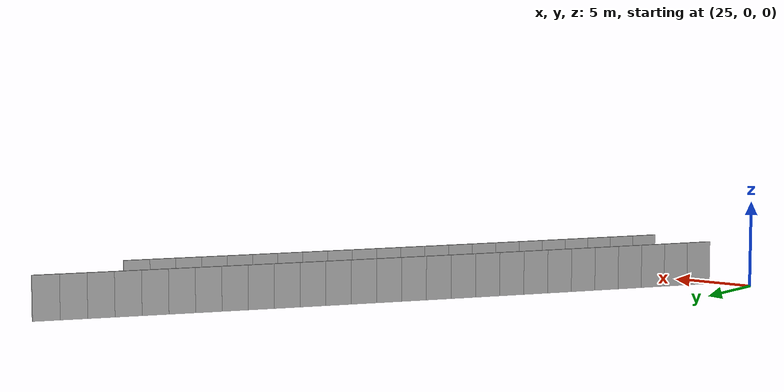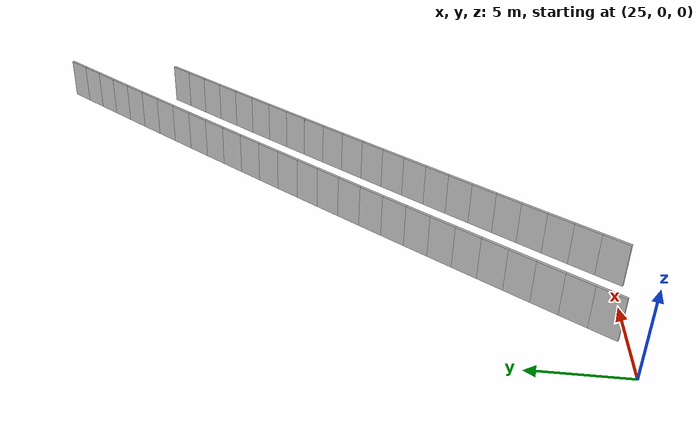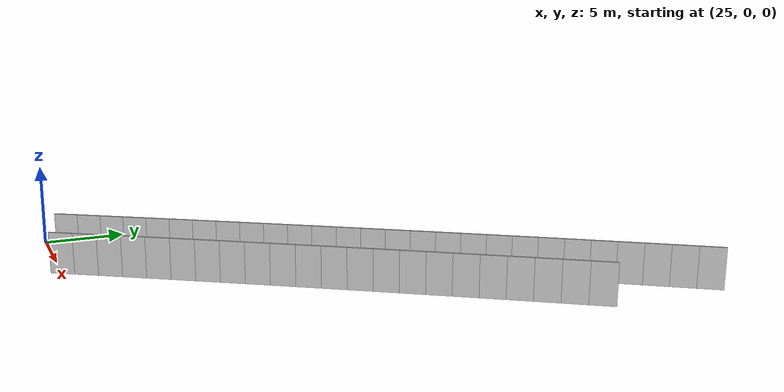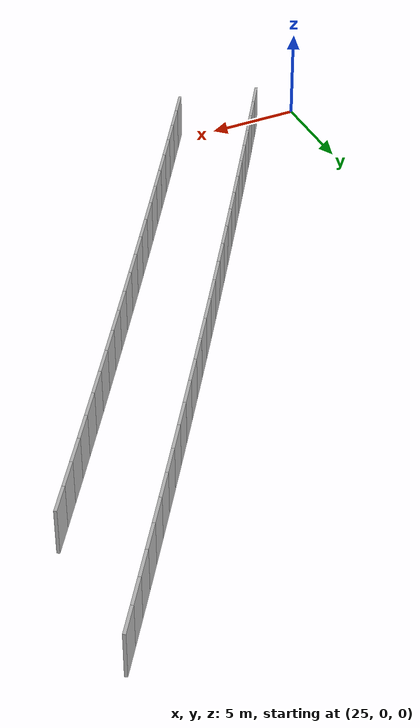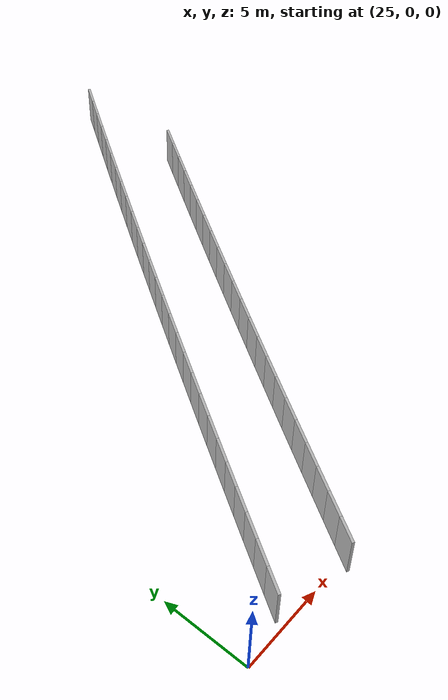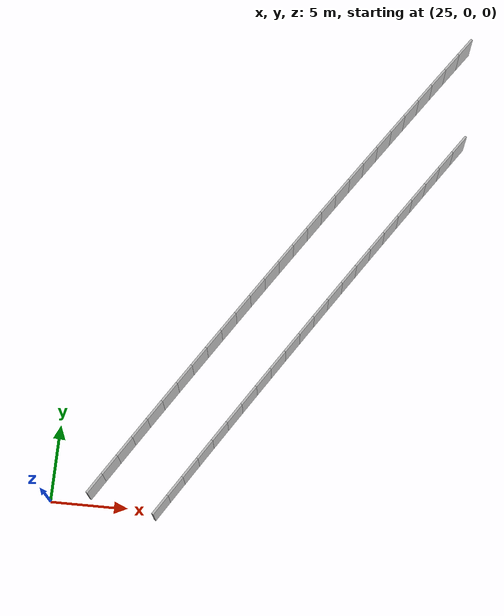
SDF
<?xml version="1.0" ?>
<sdf version="1.6">
  <model name="sps_0536">
    <pose frame="">0 0 0 0 -0 0</pose>
    <static>1</static>
    <self_collide>0</self_collide>
    <allow_auto_disable>0</allow_auto_disable>
    <link name="Wall4829">
      <kinematic>0</kinematic>
      <gravity>1</gravity>
      <self_collide>0</self_collide>
      <collision name="collision">
        <geometry>
          <box>
            <size>1.49647 0.15 2.5</size>
          </box>
        </geometry>
        <pose frame="">0 0 0 0 -0 0</pose>
      </collision>
      <visual name="visual">
        <geometry>
          <box>
            <size>1.49647 0.15 2.5</size>
          </box>
        </geometry>
        <pose frame="">0 0 0 0 -0 0</pose>
        <cast_shadows>1</cast_shadows>
        <transparency>0.0</transparency>
      </visual>
      <pose frame="">49.5547 26.3019 1.25 0 0 -2.17114</pose>
    </link>
    <link name="Wall4830">
      <kinematic>0</kinematic>
      <gravity>1</gravity>
      <self_collide>0</self_collide>
      <collision name="collision">
        <geometry>
          <box>
            <size>1.49665 0.15 2.5</size>
          </box>
        </geometry>
        <pose frame="">0 0 0 0 -0 0</pose>
      </collision>
      <visual name="visual">
        <geometry>
          <box>
            <size>1.49665 0.15 2.5</size>
          </box>
        </geometry>
        <pose frame="">0 0 0 0 -0 0</pose>
        <cast_shadows>1</cast_shadows>
        <transparency>0.0</transparency>
      </visual>
      <pose frame="">48.7103 25.0663 1.25 0 0 -2.16943</pose>
    </link>
    <link name="Wall4831">
      <kinematic>0</kinematic>
      <gravity>1</gravity>
      <self_collide>0</self_collide>
      <collision name="collision">
        <geometry>
          <box>
            <size>1.49636 0.15 2.5</size>
          </box>
        </geometry>
        <pose frame="">0 0 0 0 -0 0</pose>
      </collision>
      <visual name="visual">
        <geometry>
          <box>
            <size>1.49636 0.15 2.5</size>
          </box>
        </geometry>
        <pose frame="">0 0 0 0 -0 0</pose>
        <cast_shadows>1</cast_shadows>
        <transparency>0.0</transparency>
      </visual>
      <pose frame="">47.8679 23.8294 1.25 0 0 -2.16799</pose>
    </link>
    <link name="Wall4832">
      <kinematic>0</kinematic>
      <gravity>1</gravity>
      <self_collide>0</self_collide>
      <collision name="collision">
        <geometry>
          <box>
            <size>1.49655 0.15 2.5</size>
          </box>
        </geometry>
        <pose frame="">0 0 0 0 -0 0</pose>
      </collision>
      <visual name="visual">
        <geometry>
          <box>
            <size>1.49655 0.15 2.5</size>
          </box>
        </geometry>
        <pose frame="">0 0 0 0 -0 0</pose>
        <cast_shadows>1</cast_shadows>
        <transparency>0.0</transparency>
      </visual>
      <pose frame="">47.0275 22.5912 1.25 0 0 -2.16622</pose>
    </link>
    <link name="Wall4833">
      <kinematic>0</kinematic>
      <gravity>1</gravity>
      <self_collide>0</self_collide>
      <collision name="collision">
        <geometry>
          <box>
            <size>1.49652 0.15 2.5</size>
          </box>
        </geometry>
        <pose frame="">0 0 0 0 -0 0</pose>
      </collision>
      <visual name="visual">
        <geometry>
          <box>
            <size>1.49652 0.15 2.5</size>
          </box>
        </geometry>
        <pose frame="">0 0 0 0 -0 0</pose>
        <cast_shadows>1</cast_shadows>
        <transparency>0.0</transparency>
      </visual>
      <pose frame="">46.1891 21.3516 1.25 0 0 -2.16481</pose>
    </link>
    <link name="Wall4834">
      <kinematic>0</kinematic>
      <gravity>1</gravity>
      <self_collide>0</self_collide>
      <collision name="collision">
        <geometry>
          <box>
            <size>1.49639 0.15 2.5</size>
          </box>
        </geometry>
        <pose frame="">0 0 0 0 -0 0</pose>
      </collision>
      <visual name="visual">
        <geometry>
          <box>
            <size>1.49639 0.15 2.5</size>
          </box>
        </geometry>
        <pose frame="">0 0 0 0 -0 0</pose>
        <cast_shadows>1</cast_shadows>
        <transparency>0.0</transparency>
      </visual>
      <pose frame="">45.3526 20.1108 1.25 0 0 -2.16314</pose>
    </link>
    <link name="Wall4835">
      <kinematic>0</kinematic>
      <gravity>1</gravity>
      <self_collide>0</self_collide>
      <collision name="collision">
        <geometry>
          <box>
            <size>1.49674 0.15 2.5</size>
          </box>
        </geometry>
        <pose frame="">0 0 0 0 -0 0</pose>
      </collision>
      <visual name="visual">
        <geometry>
          <box>
            <size>1.49674 0.15 2.5</size>
          </box>
        </geometry>
        <pose frame="">0 0 0 0 -0 0</pose>
        <cast_shadows>1</cast_shadows>
        <transparency>0.0</transparency>
      </visual>
      <pose frame="">44.5179 18.8686 1.25 0 0 -2.16166</pose>
    </link>
    <link name="Wall4836">
      <kinematic>0</kinematic>
      <gravity>1</gravity>
      <self_collide>0</self_collide>
      <collision name="collision">
        <geometry>
          <box>
            <size>1.49653 0.15 2.5</size>
          </box>
        </geometry>
        <pose frame="">0 0 0 0 -0 0</pose>
      </collision>
      <visual name="visual">
        <geometry>
          <box>
            <size>1.49653 0.15 2.5</size>
          </box>
        </geometry>
        <pose frame="">0 0 0 0 -0 0</pose>
        <cast_shadows>1</cast_shadows>
        <transparency>0.0</transparency>
      </visual>
      <pose frame="">43.6852 17.625 1.25 0 0 -2.15999</pose>
    </link>
    <link name="Wall4837">
      <kinematic>0</kinematic>
      <gravity>1</gravity>
      <self_collide>0</self_collide>
      <collision name="collision">
        <geometry>
          <box>
            <size>1.49638 0.15 2.5</size>
          </box>
        </geometry>
        <pose frame="">0 0 0 0 -0 0</pose>
      </collision>
      <visual name="visual">
        <geometry>
          <box>
            <size>1.49638 0.15 2.5</size>
          </box>
        </geometry>
        <pose frame="">0 0 0 0 -0 0</pose>
        <cast_shadows>1</cast_shadows>
        <transparency>0.0</transparency>
      </visual>
      <pose frame="">42.8546 16.3802 1.25 0 0 -2.15844</pose>
    </link>
    <link name="Wall4838">
      <kinematic>0</kinematic>
      <gravity>1</gravity>
      <self_collide>0</self_collide>
      <collision name="collision">
        <geometry>
          <box>
            <size>1.49674 0.15 2.5</size>
          </box>
        </geometry>
        <pose frame="">0 0 0 0 -0 0</pose>
      </collision>
      <visual name="visual">
        <geometry>
          <box>
            <size>1.49674 0.15 2.5</size>
          </box>
        </geometry>
        <pose frame="">0 0 0 0 -0 0</pose>
        <cast_shadows>1</cast_shadows>
        <transparency>0.0</transparency>
      </visual>
      <pose frame="">42.026 15.134 1.25 0 0 -2.15681</pose>
    </link>
    <link name="Wall4839">
      <kinematic>0</kinematic>
      <gravity>1</gravity>
      <self_collide>0</self_collide>
      <collision name="collision">
        <geometry>
          <box>
            <size>1.49642 0.15 2.5</size>
          </box>
        </geometry>
        <pose frame="">0 0 0 0 -0 0</pose>
      </collision>
      <visual name="visual">
        <geometry>
          <box>
            <size>1.49642 0.15 2.5</size>
          </box>
        </geometry>
        <pose frame="">0 0 0 0 -0 0</pose>
        <cast_shadows>1</cast_shadows>
        <transparency>0.0</transparency>
      </visual>
      <pose frame="">41.1993 13.8865 1.25 0 0 -2.15524</pose>
    </link>
    <link name="Wall4840">
      <kinematic>0</kinematic>
      <gravity>1</gravity>
      <self_collide>0</self_collide>
      <collision name="collision">
        <geometry>
          <box>
            <size>1.49653 0.15 2.5</size>
          </box>
        </geometry>
        <pose frame="">0 0 0 0 -0 0</pose>
      </collision>
      <visual name="visual">
        <geometry>
          <box>
            <size>1.49653 0.15 2.5</size>
          </box>
        </geometry>
        <pose frame="">0 0 0 0 -0 0</pose>
        <cast_shadows>1</cast_shadows>
        <transparency>0.0</transparency>
      </visual>
      <pose frame="">40.3746 12.6378 1.25 0 0 -2.15372</pose>
    </link>
    <link name="Wall4841">
      <kinematic>0</kinematic>
      <gravity>1</gravity>
      <self_collide>0</self_collide>
      <collision name="collision">
        <geometry>
          <box>
            <size>1.49648 0.15 2.5</size>
          </box>
        </geometry>
        <pose frame="">0 0 0 0 -0 0</pose>
      </collision>
      <visual name="visual">
        <geometry>
          <box>
            <size>1.49648 0.15 2.5</size>
          </box>
        </geometry>
        <pose frame="">0 0 0 0 -0 0</pose>
        <cast_shadows>1</cast_shadows>
        <transparency>0.0</transparency>
      </visual>
      <pose frame="">39.5517 11.3878 1.25 0 0 -2.15218</pose>
    </link>
    <link name="Wall4842">
      <kinematic>0</kinematic>
      <gravity>1</gravity>
      <self_collide>0</self_collide>
      <collision name="collision">
        <geometry>
          <box>
            <size>1.49636 0.15 2.5</size>
          </box>
        </geometry>
        <pose frame="">0 0 0 0 -0 0</pose>
      </collision>
      <visual name="visual">
        <geometry>
          <box>
            <size>1.49636 0.15 2.5</size>
          </box>
        </geometry>
        <pose frame="">0 0 0 0 -0 0</pose>
        <cast_shadows>1</cast_shadows>
        <transparency>0.0</transparency>
      </visual>
      <pose frame="">38.731 10.1365 1.25 0 0 -2.15043</pose>
    </link>
    <link name="Wall4843">
      <kinematic>0</kinematic>
      <gravity>1</gravity>
      <self_collide>0</self_collide>
      <collision name="collision">
        <geometry>
          <box>
            <size>1.49662 0.15 2.5</size>
          </box>
        </geometry>
        <pose frame="">0 0 0 0 -0 0</pose>
      </collision>
      <visual name="visual">
        <geometry>
          <box>
            <size>1.49662 0.15 2.5</size>
          </box>
        </geometry>
        <pose frame="">0 0 0 0 -0 0</pose>
        <cast_shadows>1</cast_shadows>
        <transparency>0.0</transparency>
      </visual>
      <pose frame="">37.9123 8.8838 1.25 0 0 -2.1489</pose>
    </link>
    <link name="Wall4844">
      <kinematic>0</kinematic>
      <gravity>1</gravity>
      <self_collide>0</self_collide>
      <collision name="collision">
        <geometry>
          <box>
            <size>1.49649 0.15 2.5</size>
          </box>
        </geometry>
        <pose frame="">0 0 0 0 -0 0</pose>
      </collision>
      <visual name="visual">
        <geometry>
          <box>
            <size>1.49649 0.15 2.5</size>
          </box>
        </geometry>
        <pose frame="">0 0 0 0 -0 0</pose>
        <cast_shadows>1</cast_shadows>
        <transparency>0.0</transparency>
      </visual>
      <pose frame="">37.0955 7.62981 1.25 0 0 -2.14735</pose>
    </link>
    <link name="Wall4845">
      <kinematic>0</kinematic>
      <gravity>1</gravity>
      <self_collide>0</self_collide>
      <collision name="collision">
        <geometry>
          <box>
            <size>1.49662 0.15 2.5</size>
          </box>
        </geometry>
        <pose frame="">0 0 0 0 -0 0</pose>
      </collision>
      <visual name="visual">
        <geometry>
          <box>
            <size>1.49662 0.15 2.5</size>
          </box>
        </geometry>
        <pose frame="">0 0 0 0 -0 0</pose>
        <cast_shadows>1</cast_shadows>
        <transparency>0.0</transparency>
      </visual>
      <pose frame="">36.2808 6.3745 1.25 0 0 -2.14569</pose>
    </link>
    <link name="Wall4846">
      <kinematic>0</kinematic>
      <gravity>1</gravity>
      <self_collide>0</self_collide>
      <collision name="collision">
        <geometry>
          <box>
            <size>1.49654 0.15 2.5</size>
          </box>
        </geometry>
        <pose frame="">0 0 0 0 -0 0</pose>
      </collision>
      <visual name="visual">
        <geometry>
          <box>
            <size>1.49654 0.15 2.5</size>
          </box>
        </geometry>
        <pose frame="">0 0 0 0 -0 0</pose>
        <cast_shadows>1</cast_shadows>
        <transparency>0.0</transparency>
      </visual>
      <pose frame="">35.4679 5.11787 1.25 0 0 -2.14417</pose>
    </link>
    <link name="Wall4847">
      <kinematic>0</kinematic>
      <gravity>1</gravity>
      <self_collide>0</self_collide>
      <collision name="collision">
        <geometry>
          <box>
            <size>1.49639 0.15 2.5</size>
          </box>
        </geometry>
        <pose frame="">0 0 0 0 -0 0</pose>
      </collision>
      <visual name="visual">
        <geometry>
          <box>
            <size>1.49639 0.15 2.5</size>
          </box>
        </geometry>
        <pose frame="">0 0 0 0 -0 0</pose>
        <cast_shadows>1</cast_shadows>
        <transparency>0.0</transparency>
      </visual>
      <pose frame="">34.6572 3.86009 1.25 0 0 -2.14259</pose>
    </link>
    <link name="Wall4848">
      <kinematic>0</kinematic>
      <gravity>1</gravity>
      <self_collide>0</self_collide>
      <collision name="collision">
        <geometry>
          <box>
            <size>1.49656 0.15 2.5</size>
          </box>
        </geometry>
        <pose frame="">0 0 0 0 -0 0</pose>
      </collision>
      <visual name="visual">
        <geometry>
          <box>
            <size>1.49656 0.15 2.5</size>
          </box>
        </geometry>
        <pose frame="">0 0 0 0 -0 0</pose>
        <cast_shadows>1</cast_shadows>
        <transparency>0.0</transparency>
      </visual>
      <pose frame="">33.8484 2.601 1.25 0 0 -2.14096</pose>
    </link>
    <link name="Wall4849">
      <kinematic>0</kinematic>
      <gravity>1</gravity>
      <self_collide>0</self_collide>
      <collision name="collision">
        <geometry>
          <box>
            <size>1.49649 0.15 2.5</size>
          </box>
        </geometry>
        <pose frame="">0 0 0 0 -0 0</pose>
      </collision>
      <visual name="visual">
        <geometry>
          <box>
            <size>1.49649 0.15 2.5</size>
          </box>
        </geometry>
        <pose frame="">0 0 0 0 -0 0</pose>
        <cast_shadows>1</cast_shadows>
        <transparency>0.0</transparency>
      </visual>
      <pose frame="">33.0416 1.34059 1.25 0 0 -2.13944</pose>
    </link>
    <link name="Wall4850">
      <kinematic>0</kinematic>
      <gravity>1</gravity>
      <self_collide>0</self_collide>
      <collision name="collision">
        <geometry>
          <box>
            <size>1.49656 0.15 2.5</size>
          </box>
        </geometry>
        <pose frame="">0 0 0 0 -0 0</pose>
      </collision>
      <visual name="visual">
        <geometry>
          <box>
            <size>1.49656 0.15 2.5</size>
          </box>
        </geometry>
        <pose frame="">0 0 0 0 -0 0</pose>
        <cast_shadows>1</cast_shadows>
        <transparency>0.0</transparency>
      </visual>
      <pose frame="">32.2367 0.0789022 1.25 0 0 -2.13777</pose>
    </link>
    <link name="Wall6621">
      <kinematic>0</kinematic>
      <gravity>1</gravity>
      <self_collide>0</self_collide>
      <collision name="collision">
        <geometry>
          <box>
            <size>1.50326 0.15 2.5</size>
          </box>
        </geometry>
        <pose frame="">0 0 0 0 -0 0</pose>
      </collision>
      <visual name="visual">
        <geometry>
          <box>
            <size>1.50326 0.15 2.5</size>
          </box>
        </geometry>
        <pose frame="">0 0 0 0 -0 0</pose>
        <cast_shadows>1</cast_shadows>
        <transparency>0.0</transparency>
      </visual>
      <pose frame="">49.5517 33.591 1.25 0 0 -2.17741</pose>
    </link>
    <link name="Wall6622">
      <kinematic>0</kinematic>
      <gravity>1</gravity>
      <self_collide>0</self_collide>
      <collision name="collision">
        <geometry>
          <box>
            <size>1.50301 0.15 2.5</size>
          </box>
        </geometry>
        <pose frame="">0 0 0 0 -0 0</pose>
      </collision>
      <visual name="visual">
        <geometry>
          <box>
            <size>1.50301 0.15 2.5</size>
          </box>
        </geometry>
        <pose frame="">0 0 0 0 -0 0</pose>
        <cast_shadows>1</cast_shadows>
        <transparency>0.0</transparency>
      </visual>
      <pose frame="">48.6958 32.3554 1.25 0 0 -2.1759</pose>
    </link>
    <link name="Wall6623">
      <kinematic>0</kinematic>
      <gravity>1</gravity>
      <self_collide>0</self_collide>
      <collision name="collision">
        <geometry>
          <box>
            <size>1.50311 0.15 2.5</size>
          </box>
        </geometry>
        <pose frame="">0 0 0 0 -0 0</pose>
      </collision>
      <visual name="visual">
        <geometry>
          <box>
            <size>1.50311 0.15 2.5</size>
          </box>
        </geometry>
        <pose frame="">0 0 0 0 -0 0</pose>
        <cast_shadows>1</cast_shadows>
        <transparency>0.0</transparency>
      </visual>
      <pose frame="">47.8418 31.1185 1.25 0 0 -2.17427</pose>
    </link>
    <link name="Wall6624">
      <kinematic>0</kinematic>
      <gravity>1</gravity>
      <self_collide>0</self_collide>
      <collision name="collision">
        <geometry>
          <box>
            <size>1.50323 0.15 2.5</size>
          </box>
        </geometry>
        <pose frame="">0 0 0 0 -0 0</pose>
      </collision>
      <visual name="visual">
        <geometry>
          <box>
            <size>1.50323 0.15 2.5</size>
          </box>
        </geometry>
        <pose frame="">0 0 0 0 -0 0</pose>
        <cast_shadows>1</cast_shadows>
        <transparency>0.0</transparency>
      </visual>
      <pose frame="">46.9896 29.8802 1.25 0 0 -2.17274</pose>
    </link>
    <link name="Wall6625">
      <kinematic>0</kinematic>
      <gravity>1</gravity>
      <self_collide>0</self_collide>
      <collision name="collision">
        <geometry>
          <box>
            <size>1.50314 0.15 2.5</size>
          </box>
        </geometry>
        <pose frame="">0 0 0 0 -0 0</pose>
      </collision>
      <visual name="visual">
        <geometry>
          <box>
            <size>1.50314 0.15 2.5</size>
          </box>
        </geometry>
        <pose frame="">0 0 0 0 -0 0</pose>
        <cast_shadows>1</cast_shadows>
        <transparency>0.0</transparency>
      </visual>
      <pose frame="">46.1395 28.6405 1.25 0 0 -2.17101</pose>
    </link>
    <link name="Wall6626">
      <kinematic>0</kinematic>
      <gravity>1</gravity>
      <self_collide>0</self_collide>
      <collision name="collision">
        <geometry>
          <box>
            <size>1.50307 0.15 2.5</size>
          </box>
        </geometry>
        <pose frame="">0 0 0 0 -0 0</pose>
      </collision>
      <visual name="visual">
        <geometry>
          <box>
            <size>1.50307 0.15 2.5</size>
          </box>
        </geometry>
        <pose frame="">0 0 0 0 -0 0</pose>
        <cast_shadows>1</cast_shadows>
        <transparency>0.0</transparency>
      </visual>
      <pose frame="">45.2915 27.3995 1.25 0 0 -2.16957</pose>
    </link>
    <link name="Wall6627">
      <kinematic>0</kinematic>
      <gravity>1</gravity>
      <self_collide>0</self_collide>
      <collision name="collision">
        <geometry>
          <box>
            <size>1.50287 0.15 2.5</size>
          </box>
        </geometry>
        <pose frame="">0 0 0 0 -0 0</pose>
      </collision>
      <visual name="visual">
        <geometry>
          <box>
            <size>1.50287 0.15 2.5</size>
          </box>
        </geometry>
        <pose frame="">0 0 0 0 -0 0</pose>
        <cast_shadows>1</cast_shadows>
        <transparency>0.0</transparency>
      </visual>
      <pose frame="">44.4454 26.1573 1.25 0 0 -2.16793</pose>
    </link>
    <link name="Wall6628">
      <kinematic>0</kinematic>
      <gravity>1</gravity>
      <self_collide>0</self_collide>
      <collision name="collision">
        <geometry>
          <box>
            <size>1.50316 0.15 2.5</size>
          </box>
        </geometry>
        <pose frame="">0 0 0 0 -0 0</pose>
      </collision>
      <visual name="visual">
        <geometry>
          <box>
            <size>1.50316 0.15 2.5</size>
          </box>
        </geometry>
        <pose frame="">0 0 0 0 -0 0</pose>
        <cast_shadows>1</cast_shadows>
        <transparency>0.0</transparency>
      </visual>
      <pose frame="">43.6012 24.9137 1.25 0 0 -2.16633</pose>
    </link>
    <link name="Wall6629">
      <kinematic>0</kinematic>
      <gravity>1</gravity>
      <self_collide>0</self_collide>
      <collision name="collision">
        <geometry>
          <box>
            <size>1.50304 0.15 2.5</size>
          </box>
        </geometry>
        <pose frame="">0 0 0 0 -0 0</pose>
      </collision>
      <visual name="visual">
        <geometry>
          <box>
            <size>1.50304 0.15 2.5</size>
          </box>
        </geometry>
        <pose frame="">0 0 0 0 -0 0</pose>
        <cast_shadows>1</cast_shadows>
        <transparency>0.0</transparency>
      </visual>
      <pose frame="">42.7591 23.6687 1.25 0 0 -2.16477</pose>
    </link>
    <link name="Wall6630">
      <kinematic>0</kinematic>
      <gravity>1</gravity>
      <self_collide>0</self_collide>
      <collision name="collision">
        <geometry>
          <box>
            <size>1.50296 0.15 2.5</size>
          </box>
        </geometry>
        <pose frame="">0 0 0 0 -0 0</pose>
      </collision>
      <visual name="visual">
        <geometry>
          <box>
            <size>1.50296 0.15 2.5</size>
          </box>
        </geometry>
        <pose frame="">0 0 0 0 -0 0</pose>
        <cast_shadows>1</cast_shadows>
        <transparency>0.0</transparency>
      </visual>
      <pose frame="">41.9188 22.4225 1.25 0 0 -2.16324</pose>
    </link>
    <link name="Wall6631">
      <kinematic>0</kinematic>
      <gravity>1</gravity>
      <self_collide>0</self_collide>
      <collision name="collision">
        <geometry>
          <box>
            <size>1.50326 0.15 2.5</size>
          </box>
        </geometry>
        <pose frame="">0 0 0 0 -0 0</pose>
      </collision>
      <visual name="visual">
        <geometry>
          <box>
            <size>1.50326 0.15 2.5</size>
          </box>
        </geometry>
        <pose frame="">0 0 0 0 -0 0</pose>
        <cast_shadows>1</cast_shadows>
        <transparency>0.0</transparency>
      </visual>
      <pose frame="">41.0805 21.1749 1.25 0 0 -2.16164</pose>
    </link>
    <link name="Wall6632">
      <kinematic>0</kinematic>
      <gravity>1</gravity>
      <self_collide>0</self_collide>
      <collision name="collision">
        <geometry>
          <box>
            <size>1.50296 0.15 2.5</size>
          </box>
        </geometry>
        <pose frame="">0 0 0 0 -0 0</pose>
      </collision>
      <visual name="visual">
        <geometry>
          <box>
            <size>1.50296 0.15 2.5</size>
          </box>
        </geometry>
        <pose frame="">0 0 0 0 -0 0</pose>
        <cast_shadows>1</cast_shadows>
        <transparency>0.0</transparency>
      </visual>
      <pose frame="">40.2443 19.9259 1.25 0 0 -2.15996</pose>
    </link>
    <link name="Wall6633">
      <kinematic>0</kinematic>
      <gravity>1</gravity>
      <self_collide>0</self_collide>
      <collision name="collision">
        <geometry>
          <box>
            <size>1.50323 0.15 2.5</size>
          </box>
        </geometry>
        <pose frame="">0 0 0 0 -0 0</pose>
      </collision>
      <visual name="visual">
        <geometry>
          <box>
            <size>1.50323 0.15 2.5</size>
          </box>
        </geometry>
        <pose frame="">0 0 0 0 -0 0</pose>
        <cast_shadows>1</cast_shadows>
        <transparency>0.0</transparency>
      </visual>
      <pose frame="">39.41 18.6756 1.25 0 0 -2.15847</pose>
    </link>
    <link name="Wall6634">
      <kinematic>0</kinematic>
      <gravity>1</gravity>
      <self_collide>0</self_collide>
      <collision name="collision">
        <geometry>
          <box>
            <size>1.50308 0.15 2.5</size>
          </box>
        </geometry>
        <pose frame="">0 0 0 0 -0 0</pose>
      </collision>
      <visual name="visual">
        <geometry>
          <box>
            <size>1.50308 0.15 2.5</size>
          </box>
        </geometry>
        <pose frame="">0 0 0 0 -0 0</pose>
        <cast_shadows>1</cast_shadows>
        <transparency>0.0</transparency>
      </visual>
      <pose frame="">38.5775 17.424 1.25 0 0 -2.15693</pose>
    </link>
    <link name="Wall6635">
      <kinematic>0</kinematic>
      <gravity>1</gravity>
      <self_collide>0</self_collide>
      <collision name="collision">
        <geometry>
          <box>
            <size>1.50316 0.15 2.5</size>
          </box>
        </geometry>
        <pose frame="">0 0 0 0 -0 0</pose>
      </collision>
      <visual name="visual">
        <geometry>
          <box>
            <size>1.50316 0.15 2.5</size>
          </box>
        </geometry>
        <pose frame="">0 0 0 0 -0 0</pose>
        <cast_shadows>1</cast_shadows>
        <transparency>0.0</transparency>
      </visual>
      <pose frame="">37.7472 16.171 1.25 0 0 -2.15509</pose>
    </link>
    <link name="Wall6636">
      <kinematic>0</kinematic>
      <gravity>1</gravity>
      <self_collide>0</self_collide>
      <collision name="collision">
        <geometry>
          <box>
            <size>1.5032 0.15 2.5</size>
          </box>
        </geometry>
        <pose frame="">0 0 0 0 -0 0</pose>
      </collision>
      <visual name="visual">
        <geometry>
          <box>
            <size>1.5032 0.15 2.5</size>
          </box>
        </geometry>
        <pose frame="">0 0 0 0 -0 0</pose>
        <cast_shadows>1</cast_shadows>
        <transparency>0.0</transparency>
      </visual>
      <pose frame="">36.919 14.9166 1.25 0 0 -2.15366</pose>
    </link>
    <link name="Wall6637">
      <kinematic>0</kinematic>
      <gravity>1</gravity>
      <self_collide>0</self_collide>
      <collision name="collision">
        <geometry>
          <box>
            <size>1.50296 0.15 2.5</size>
          </box>
        </geometry>
        <pose frame="">0 0 0 0 -0 0</pose>
      </collision>
      <visual name="visual">
        <geometry>
          <box>
            <size>1.50296 0.15 2.5</size>
          </box>
        </geometry>
        <pose frame="">0 0 0 0 -0 0</pose>
        <cast_shadows>1</cast_shadows>
        <transparency>0.0</transparency>
      </visual>
      <pose frame="">36.0927 13.661 1.25 0 0 -2.15202</pose>
    </link>
    <link name="Wall6638">
      <kinematic>0</kinematic>
      <gravity>1</gravity>
      <self_collide>0</self_collide>
      <collision name="collision">
        <geometry>
          <box>
            <size>1.50296 0.15 2.5</size>
          </box>
        </geometry>
        <pose frame="">0 0 0 0 -0 0</pose>
      </collision>
      <visual name="visual">
        <geometry>
          <box>
            <size>1.50296 0.15 2.5</size>
          </box>
        </geometry>
        <pose frame="">0 0 0 0 -0 0</pose>
        <cast_shadows>1</cast_shadows>
        <transparency>0.0</transparency>
      </visual>
      <pose frame="">35.2685 12.4042 1.25 0 0 -2.15046</pose>
    </link>
    <link name="Wall6639">
      <kinematic>0</kinematic>
      <gravity>1</gravity>
      <self_collide>0</self_collide>
      <collision name="collision">
        <geometry>
          <box>
            <size>1.50319 0.15 2.5</size>
          </box>
        </geometry>
        <pose frame="">0 0 0 0 -0 0</pose>
      </collision>
      <visual name="visual">
        <geometry>
          <box>
            <size>1.50319 0.15 2.5</size>
          </box>
        </geometry>
        <pose frame="">0 0 0 0 -0 0</pose>
        <cast_shadows>1</cast_shadows>
        <transparency>0.0</transparency>
      </visual>
      <pose frame="">34.446 11.1461 1.25 0 0 -2.14906</pose>
    </link>
    <link name="Wall6640">
      <kinematic>0</kinematic>
      <gravity>1</gravity>
      <self_collide>0</self_collide>
      <collision name="collision">
        <geometry>
          <box>
            <size>1.50306 0.15 2.5</size>
          </box>
        </geometry>
        <pose frame="">0 0 0 0 -0 0</pose>
      </collision>
      <visual name="visual">
        <geometry>
          <box>
            <size>1.50306 0.15 2.5</size>
          </box>
        </geometry>
        <pose frame="">0 0 0 0 -0 0</pose>
        <cast_shadows>1</cast_shadows>
        <transparency>0.0</transparency>
      </visual>
      <pose frame="">33.6256 9.88658 1.25 0 0 -2.14722</pose>
    </link>
    <link name="Wall6641">
      <kinematic>0</kinematic>
      <gravity>1</gravity>
      <self_collide>0</self_collide>
      <collision name="collision">
        <geometry>
          <box>
            <size>1.50309 0.15 2.5</size>
          </box>
        </geometry>
        <pose frame="">0 0 0 0 -0 0</pose>
      </collision>
      <visual name="visual">
        <geometry>
          <box>
            <size>1.50309 0.15 2.5</size>
          </box>
        </geometry>
        <pose frame="">0 0 0 0 -0 0</pose>
        <cast_shadows>1</cast_shadows>
        <transparency>0.0</transparency>
      </visual>
      <pose frame="">32.8073 8.62578 1.25 0 0 -2.14576</pose>
    </link>
    <link name="Wall6642">
      <kinematic>0</kinematic>
      <gravity>1</gravity>
      <self_collide>0</self_collide>
      <collision name="collision">
        <geometry>
          <box>
            <size>1.50297 0.15 2.5</size>
          </box>
        </geometry>
        <pose frame="">0 0 0 0 -0 0</pose>
      </collision>
      <visual name="visual">
        <geometry>
          <box>
            <size>1.50297 0.15 2.5</size>
          </box>
        </geometry>
        <pose frame="">0 0 0 0 -0 0</pose>
        <cast_shadows>1</cast_shadows>
        <transparency>0.0</transparency>
      </visual>
      <pose frame="">31.991 7.36378 1.25 0 0 -2.14421</pose>
    </link>
    <link name="Wall6643">
      <kinematic>0</kinematic>
      <gravity>1</gravity>
      <self_collide>0</self_collide>
      <collision name="collision">
        <geometry>
          <box>
            <size>1.50309 0.15 2.5</size>
          </box>
        </geometry>
        <pose frame="">0 0 0 0 -0 0</pose>
      </collision>
      <visual name="visual">
        <geometry>
          <box>
            <size>1.50309 0.15 2.5</size>
          </box>
        </geometry>
        <pose frame="">0 0 0 0 -0 0</pose>
        <cast_shadows>1</cast_shadows>
        <transparency>0.0</transparency>
      </visual>
      <pose frame="">31.1766 6.10051 1.25 0 0 -2.14261</pose>
    </link>
    <link name="Wall6644">
      <kinematic>0</kinematic>
      <gravity>1</gravity>
      <self_collide>0</self_collide>
      <collision name="collision">
        <geometry>
          <box>
            <size>1.50323 0.15 2.5</size>
          </box>
        </geometry>
        <pose frame="">0 0 0 0 -0 0</pose>
      </collision>
      <visual name="visual">
        <geometry>
          <box>
            <size>1.50323 0.15 2.5</size>
          </box>
        </geometry>
        <pose frame="">0 0 0 0 -0 0</pose>
        <cast_shadows>1</cast_shadows>
        <transparency>0.0</transparency>
      </visual>
      <pose frame="">30.3642 4.8358 1.25 0 0 -2.14096</pose>
    </link>
    <link name="Wall6645">
      <kinematic>0</kinematic>
      <gravity>1</gravity>
      <self_collide>0</self_collide>
      <collision name="collision">
        <geometry>
          <box>
            <size>1.50292 0.15 2.5</size>
          </box>
        </geometry>
        <pose frame="">0 0 0 0 -0 0</pose>
      </collision>
      <visual name="visual">
        <geometry>
          <box>
            <size>1.50292 0.15 2.5</size>
          </box>
        </geometry>
        <pose frame="">0 0 0 0 -0 0</pose>
        <cast_shadows>1</cast_shadows>
        <transparency>0.0</transparency>
      </visual>
      <pose frame="">29.5538 3.5699 1.25 0 0 -2.1395</pose>
    </link>
    <link name="Wall6646">
      <kinematic>0</kinematic>
      <gravity>1</gravity>
      <self_collide>0</self_collide>
      <collision name="collision">
        <geometry>
          <box>
            <size>1.50313 0.15 2.5</size>
          </box>
        </geometry>
        <pose frame="">0 0 0 0 -0 0</pose>
      </collision>
      <visual name="visual">
        <geometry>
          <box>
            <size>1.50313 0.15 2.5</size>
          </box>
        </geometry>
        <pose frame="">0 0 0 0 -0 0</pose>
        <cast_shadows>1</cast_shadows>
        <transparency>0.0</transparency>
      </visual>
      <pose frame="">28.7455 2.30272 1.25 0 0 -2.13768</pose>
    </link>
    <link name="Wall6647">
      <kinematic>0</kinematic>
      <gravity>1</gravity>
      <self_collide>0</self_collide>
      <collision name="collision">
        <geometry>
          <box>
            <size>1.50296 0.15 2.5</size>
          </box>
        </geometry>
        <pose frame="">0 0 0 0 -0 0</pose>
      </collision>
      <visual name="visual">
        <geometry>
          <box>
            <size>1.50296 0.15 2.5</size>
          </box>
        </geometry>
        <pose frame="">0 0 0 0 -0 0</pose>
        <cast_shadows>1</cast_shadows>
        <transparency>0.0</transparency>
      </visual>
      <pose frame="">27.9393 1.03419 1.25 0 0 -2.13621</pose>
    </link>
  </model>
</sdf>
